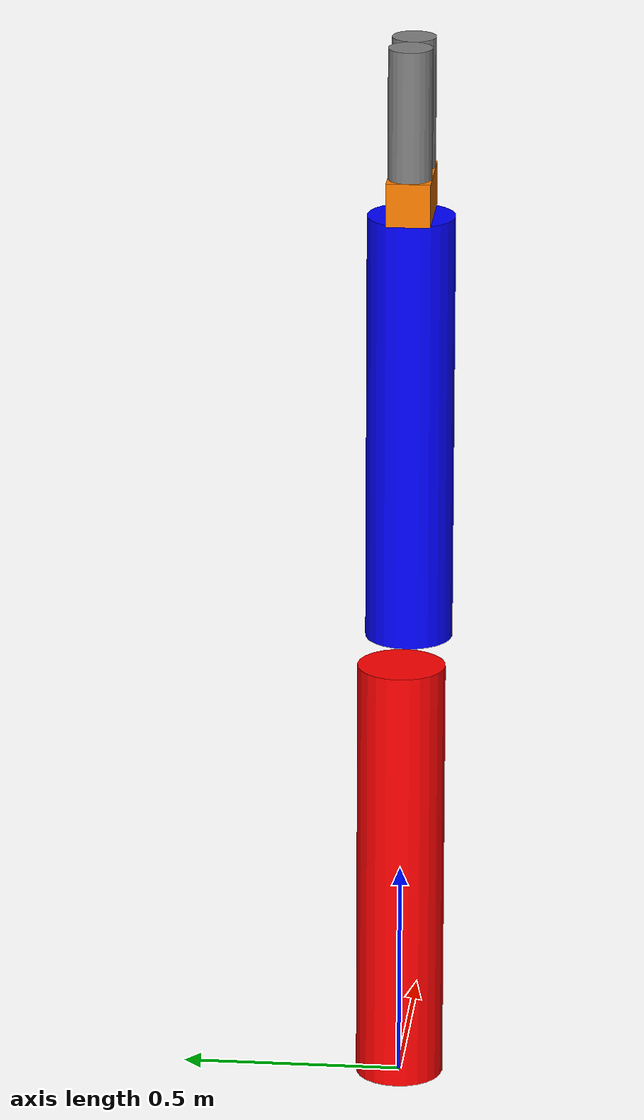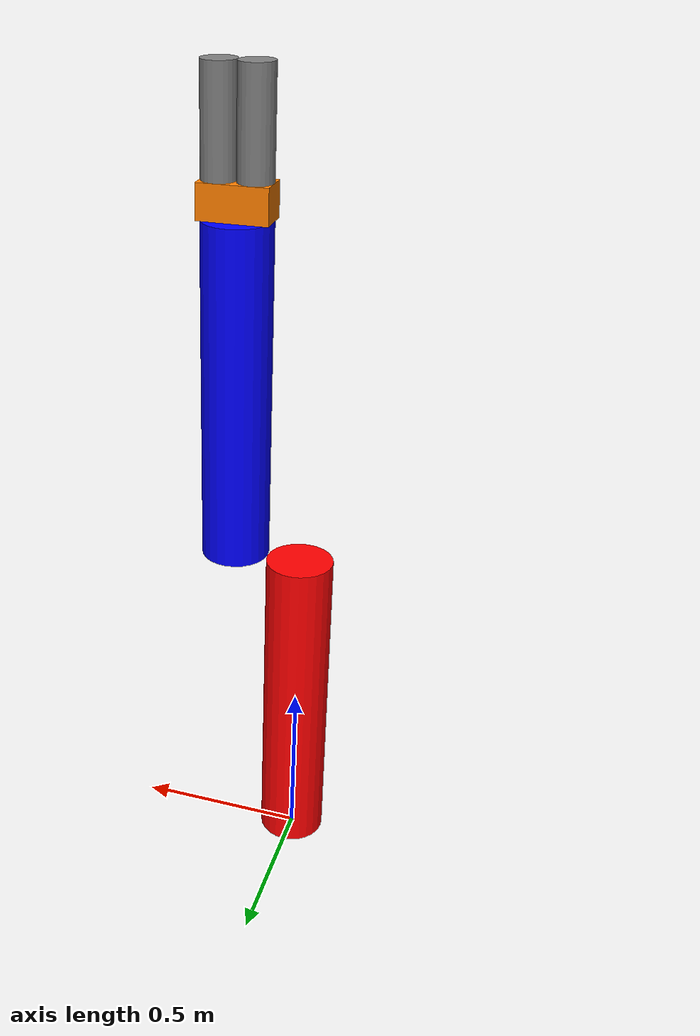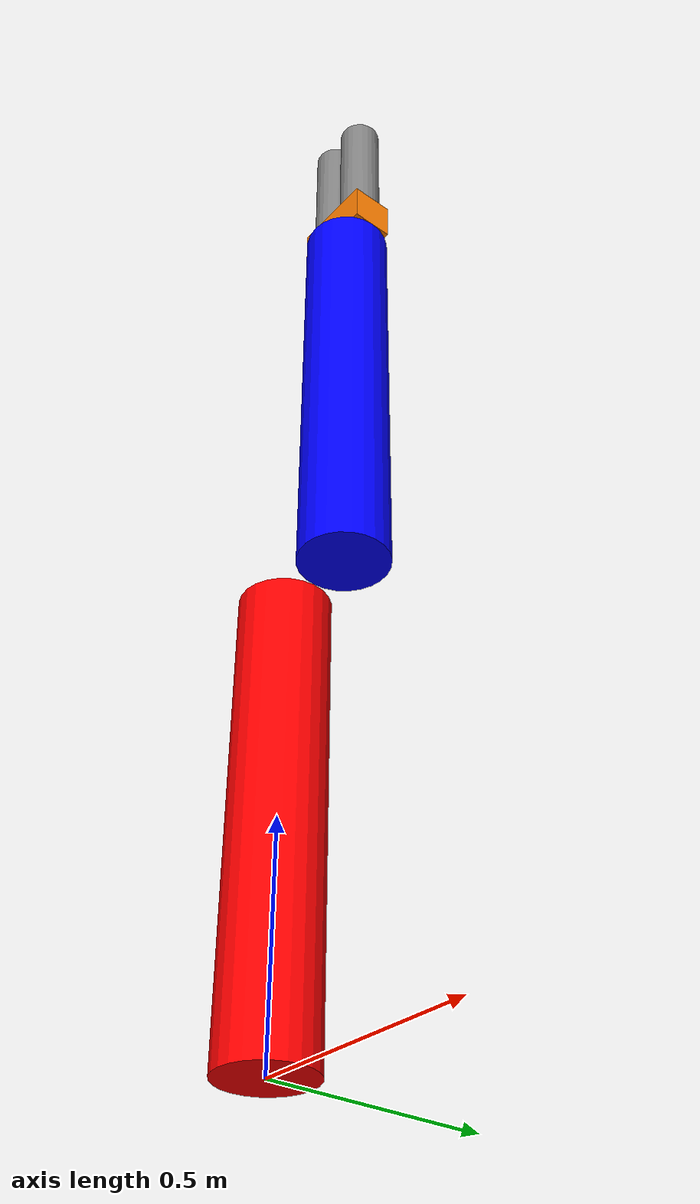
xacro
<?xml version="1.0"?>
<robot xmlns:xacro="http://www.ros.org/wiki/xacro" name="tow_dof">
    <xacro:arg name="initial_positions_file" default="initial_positions.yaml" />

    <!-- Import tow_dof urdf file -->
    <xacro:include filename="$(find tow_dof_description)/urdf/dof2.urdf" />

    <!-- Import control_xacro -->
    <xacro:include filename="tow_dof.ros2_control.xacro" />

    <xacro:tow_dof_ros2_control name="FakeSystem" initial_positions_file="$(arg initial_positions_file)"/>

</robot>

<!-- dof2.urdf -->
<!-- |    This document was autogenerated by xacro from /home/ros/tow_dof_ws/src/tow_dof_description/urdf/dof2.urdf.xacro | -->
<!-- |    EDITING THIS FILE BY HAND IS NOT RECOMMENDED                                 | -->
<robot name="tow_dof">
  <material name="red">
    <color rgba="1.0 0.0 0.0 1.0"/>
  </material>
  <material name="green">
    <color rgba="1 0.5 0 1"/>
  </material>
  <material name="gray">
    <color rgba="0.5 0.5 0.5 1"/>
  </material>
  <material name="blue">
    <color rgba="0.0 0.0 1.0 1.0"/>
  </material>
  <!-- Base Link -->
  <link name="base_link"/>
  <!-- Joint 1 (Revolute - Rotates around Z) -->
  <joint name="joint1" type="revolute">
    <parent link="base_link"/>
    <child link="link1"/>
    <origin rpy="0 0 0" xyz="0 0 0"/>
    <axis xyz="0 0 1"/>
    <!-- Rotation around Z-axis -->
    <limit effort="10.0" lower="-3.141592653589793" upper="3.141592653589793" velocity="1.0"/>
  </joint>
  <!-- Link 1 -->
  <link name="link1">
    <visual>
      <geometry>
        <cylinder length="1" radius="0.1"/>
      </geometry>
      <origin rpy="0 0 0" xyz="0 0 0.5"/>
      <material name="red"/>
    </visual>
    <collision>
      <geometry>
        <cylinder length="1" radius="0.1"/>
      </geometry>
      <origin rpy="0 0 0" xyz="0 0 0.5"/>
    </collision>
    <inertial>
      <origin rpy="0 0 0" xyz="0 0 0"/>
      <mass value="0.4"/>
      <inertia ixx="0.034333333333333334" ixy="0" ixz="0" iyy="0.034333333333333334" iyz="0" izz="0.0020000000000000005"/>
    </inertial>
  </link>
  <!-- Joint 2 (Revolute - Rotates around Y) -->
  <joint name="joint2" type="revolute">
    <parent link="link1"/>
    <child link="link2"/>
    <origin rpy="0 0 0" xyz="0.2 0 1"/>
    <axis xyz="1 0 0"/>
    <!-- Rotation around Y-axis -->
    <limit effort="10.0" lower="-1.5707963267948966" upper="1.5707963267948966" velocity="1.0"/>
  </joint>
  <!-- Link 2 -->
  <link name="link2">
    <visual>
      <geometry>
        <cylinder length="1" radius="0.1"/>
      </geometry>
      <origin rpy="0 0 0" xyz="0 0 0.5"/>
      <material name="blue"/>
    </visual>
    <collision>
      <geometry>
        <cylinder length="1" radius="0.1"/>
      </geometry>
      <origin rpy="0 0 0" xyz="0 0 0.5"/>
    </collision>
    <inertial>
      <origin rpy="0 0 0" xyz="0 0 0"/>
      <mass value="0.3"/>
      <inertia ixx="0.02575" ixy="0" ixz="0" iyy="0.02575" iyz="0" izz="0.0015000000000000002"/>
    </inertial>
  </link>
  <!-- Joint 3 (Fixed - Attaches Gripper Base to Link 2) -->
  <joint name="joint3" type="fixed">
    <parent link="link2"/>
    <child link="gripper_base"/>
    <origin rpy="0 0 0" xyz="0 0 1.05"/>
  </joint>
  <!-- Gripper Base -->
  <link name="gripper_base">
    <visual>
      <geometry>
        <box size="0.2 0.1 0.1"/>
      </geometry>
      <origin rpy="0 0 0" xyz="0 0 0"/>
      <material name="green"/>
    </visual>
    <collision>
      <geometry>
        <box size="0.2 0.1 0.1"/>
      </geometry>
      <origin rpy="0 0 0" xyz="0 0 0"/>
    </collision>
    <inertial>
      <origin rpy="0 0 0" xyz="0 0 0"/>
      <mass value="5.0"/>
      <inertia ixx="0.02083333333333334" ixy="0" ixz="0" iyy="0.02083333333333334" iyz="0" izz="0.008333333333333335"/>
    </inertial>
  </link>
  <!-- Left Gripper Finger -->
  <joint name="left_gripper_joint" type="revolute">
    <parent link="gripper_base"/>
    <child link="left_gripper"/>
    <origin rpy="0 0 0" xyz="-0.05 0 0.05"/>
    <axis xyz="0 1 0"/>
    <limit effort="5.0" lower="-1.5708" upper="0.0" velocity="1.0"/>
  </joint>
  <link name="left_gripper">
    <visual>
      <geometry>
        <cylinder length="0.30000000000000004" radius="0.05"/>
      </geometry>
      <origin rpy="0 0 0" xyz="0 0 0.15000000000000002"/>
      <material name="gray"/>
    </visual>
    <collision>
      <geometry>
        <cylinder length="0.30000000000000004" radius="0.05"/>
      </geometry>
      <origin rpy="0 0 0" xyz="0 0 0.5"/>
    </collision>
    <inertial>
      <origin rpy="0 0 0" xyz="0 0 0"/>
      <mass value="0.1"/>
      <inertia ixx="0.0008125000000000003" ixy="0" ixz="0" iyy="0.0008125000000000003" iyz="0" izz="0.00012500000000000003"/>
    </inertial>
  </link>
  <!-- Right Gripper Finger -->
  <joint name="right_gripper_joint" type="revolute">
    <parent link="gripper_base"/>
    <child link="right_gripper"/>
    <origin rpy="0 0 0" xyz="0.05 0 0.05"/>
    <axis xyz="0 1 0"/>
    <limit effort="5.0" lower="0" upper="1.5708" velocity="1.0"/>
  </joint>
  <link name="right_gripper">
    <visual>
      <geometry>
        <cylinder length="0.30000000000000004" radius="0.05"/>
      </geometry>
      <origin rpy="0 0 0" xyz="0 0 0.15000000000000002"/>
      <material name="gray"/>
    </visual>
    <collision>
      <geometry>
        <cylinder length="0.30000000000000004" radius="0.05"/>
      </geometry>
      <origin rpy="0 0 0" xyz="0 0 0.5"/>
    </collision>
    <inertial>
      <origin rpy="0 0 0" xyz="0 0 0"/>
      <mass value="0.1"/>
      <inertia ixx="0.0008125000000000003" ixy="0" ixz="0" iyy="0.0008125000000000003" iyz="0" izz="0.00012500000000000003"/>
    </inertial>
  </link>
</robot>
